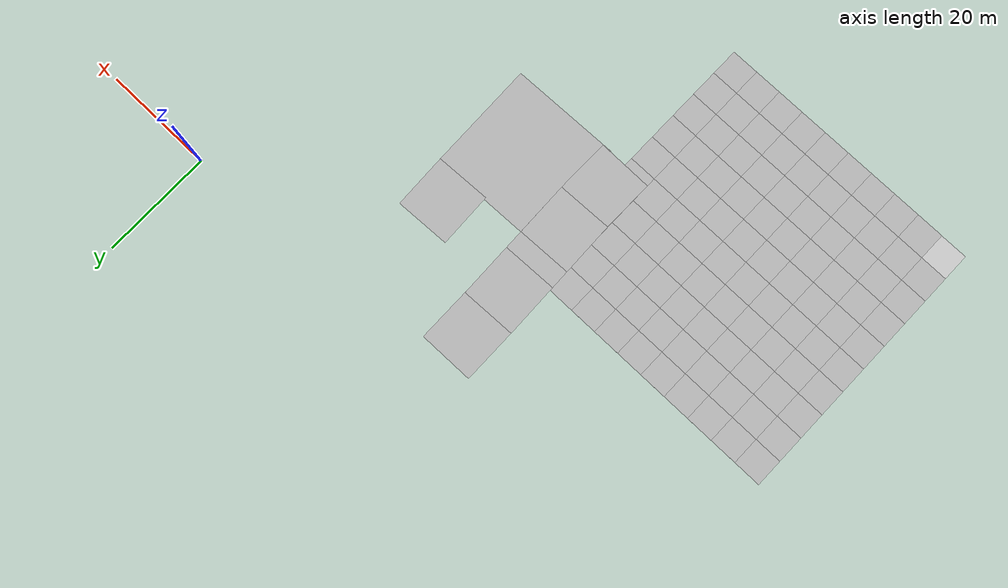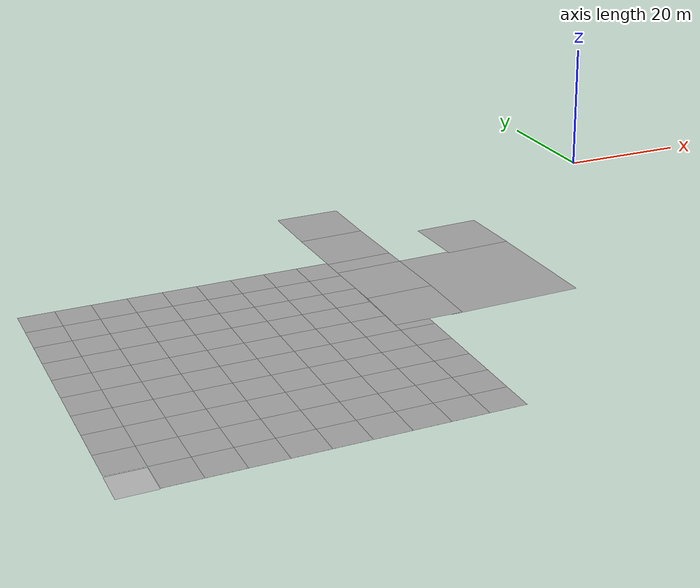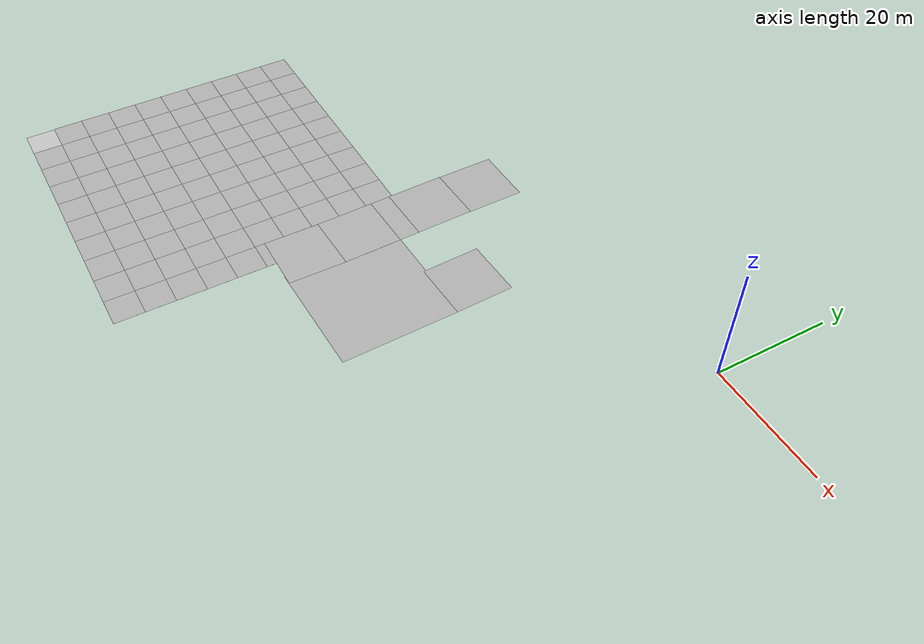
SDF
<sdf version="1.4">
 <world name="default">
  <model name="Road_straight_17">
   <static>1</static>
   <pose>-51.2073 -9.01659 -0.01 0 0 -1.56</pose>
   <link name="link">
    <visual name="visual">
     <pose>0 0 0.04 0 -0 0</pose>
     <geometry>
      <mesh><uri>model://Road_straight/models/Road 01.dae</uri><scale>0.39 0.39 1</scale></mesh>
     </geometry>
    </visual>
    <velocity_decay><linear>0</linear><angular>0</angular></velocity_decay>
   </link>
  </model>
  <model name="Road_straight_18">
   <static>1</static>
   <pose>-50.9651 -19.1524 0.02 0 -0 1.6</pose>
   <link name="link">
    <visual name="visual">
     <pose>0 0 0.04 0 -0 0</pose>
     <geometry>
      <mesh><uri>model://Road_straight/models/Road 01.dae</uri><scale>0.39 0.39 1</scale></mesh>
     </geometry>
    </visual>
    <velocity_decay><linear>0</linear><angular>0</angular></velocity_decay>
   </link>
  </model>
  <model name="Road_hard_curve_11">
   <static>1</static>
   <pose>-32.5076 -23.4149 0 0 -0 0.04</pose>
   <link name="link">
    <visual name="visual">
     <pose>0 0 0.04 0 -0 0</pose>
     <geometry>
      <mesh><uri>model://Road_hard_curve/models/Road 09.dae</uri><scale>0.39 0.39 1</scale></mesh>
     </geometry>
    </visual>
    <velocity_decay><linear>0</linear><angular>0</angular></velocity_decay>
   </link>
  </model>
  <model name="pavement_plane_7">
   <static>1</static>
   <link name="link">
    <collision name="collision">
     <geometry><plane><normal>0 0 1</normal><size>50 50</size></plane></geometry>
     <surface><friction><ode><mu>100</mu><mu2>50</mu2></ode></friction></surface>
    </collision>
    <visual name="visual_0">
     <pose>-25 -25 0 0 -0 0</pose>
     <cast_shadows>0</cast_shadows>
     <geometry><plane><normal>0 0 1</normal><size>5 5</size></plane></geometry>
     <material>
      <script>
       <uri>model://pavement_plane/materials/scripts</uri>
       <uri>model://pavement_plane/materials/textures</uri>
       <name>vrc/pavement</name>
      </script>
     </material>
    </visual>
    <visual name="visual_1">
     <pose>-20 -25 0 0 -0 0</pose>
     <cast_shadows>0</cast_shadows>
     <geometry><plane><normal>0 0 1</normal><size>5 5</size></plane></geometry>
     <material>
      <script>
       <uri>model://pavement_plane/materials/scripts</uri>
       <uri>model://pavement_plane/materials/textures</uri>
       <name>vrc/pavement</name>
      </script>
     </material>
    </visual>
    <visual name="visual_2">
     <pose>-15 -25 0 0 -0 0</pose>
     <cast_shadows>0</cast_shadows>
     <geometry><plane><normal>0 0 1</normal><size>5 5</size></plane></geometry>
     <material>
      <script>
       <uri>model://pavement_plane/materials/scripts</uri>
       <uri>model://pavement_plane/materials/textures</uri>
       <name>vrc/pavement</name>
      </script>
     </material>
    </visual>
    <visual name="visual_3">
     <pose>-10 -25 0 0 -0 0</pose>
     <cast_shadows>0</cast_shadows>
     <geometry><plane><normal>0 0 1</normal><size>5 5</size></plane></geometry>
     <material>
      <script>
       <uri>model://pavement_plane/materials/scripts</uri>
       <uri>model://pavement_plane/materials/textures</uri>
       <name>vrc/pavement</name>
      </script>
     </material>
    </visual>
    <visual name="visual_4">
     <pose>-5 -25 0 0 -0 0</pose>
     <cast_shadows>0</cast_shadows>
     <geometry><plane><normal>0 0 1</normal><size>5 5</size></plane></geometry>
     <material>
      <script>
       <uri>model://pavement_plane/materials/scripts</uri>
       <uri>model://pavement_plane/materials/textures</uri>
       <name>vrc/pavement</name>
      </script>
     </material>
    </visual>
    <visual name="visual_5">
     <pose>0 -25 0 0 -0 0</pose>
     <cast_shadows>0</cast_shadows>
     <geometry><plane><normal>0 0 1</normal><size>5 5</size></plane></geometry>
     <material>
      <script>
       <uri>model://pavement_plane/materials/scripts</uri>
       <uri>model://pavement_plane/materials/textures</uri>
       <name>vrc/pavement</name>
      </script>
     </material>
    </visual>
    <visual name="visual_6">
     <pose>5 -25 0 0 -0 0</pose>
     <cast_shadows>0</cast_shadows>
     <geometry><plane><normal>0 0 1</normal><size>5 5</size></plane></geometry>
     <material>
      <script>
       <uri>model://pavement_plane/materials/scripts</uri>
       <uri>model://pavement_plane/materials/textures</uri>
       <name>vrc/pavement</name>
      </script>
     </material>
    </visual>
    <visual name="visual_7">
     <pose>10 -25 0 0 -0 0</pose>
     <cast_shadows>0</cast_shadows>
     <geometry><plane><normal>0 0 1</normal><size>5 5</size></plane></geometry>
     <material>
      <script>
       <uri>model://pavement_plane/materials/scripts</uri>
       <uri>model://pavement_plane/materials/textures</uri>
       <name>vrc/pavement</name>
      </script>
     </material>
    </visual>
    <visual name="visual_8">
     <pose>15 -25 0 0 -0 0</pose>
     <cast_shadows>0</cast_shadows>
     <geometry><plane><normal>0 0 1</normal><size>5 5</size></plane></geometry>
     <material>
      <script>
       <uri>model://pavement_plane/materials/scripts</uri>
       <uri>model://pavement_plane/materials/textures</uri>
       <name>vrc/pavement</name>
      </script>
     </material>
    </visual>
    <visual name="visual_9">
     <pose>20 -25 0 0 -0 0</pose>
     <cast_shadows>0</cast_shadows>
     <geometry><plane><normal>0 0 1</normal><size>5 5</size></plane></geometry>
     <material>
      <script>
       <uri>model://pavement_plane/materials/scripts</uri>
       <uri>model://pavement_plane/materials/textures</uri>
       <name>vrc/pavement</name>
      </script>
     </material>
    </visual>
    <visual name="visual_10">
     <pose>-25 -20 0 0 -0 0</pose>
     <cast_shadows>0</cast_shadows>
     <geometry><plane><normal>0 0 1</normal><size>5 5</size></plane></geometry>
     <material>
      <script>
       <uri>model://pavement_plane/materials/scripts</uri>
       <uri>model://pavement_plane/materials/textures</uri>
       <name>vrc/pavement</name>
      </script>
     </material>
    </visual>
    <visual name="visual_11">
     <pose>-20 -20 0 0 -0 0</pose>
     <cast_shadows>0</cast_shadows>
     <geometry><plane><normal>0 0 1</normal><size>5 5</size></plane></geometry>
     <material>
      <script>
       <uri>model://pavement_plane/materials/scripts</uri>
       <uri>model://pavement_plane/materials/textures</uri>
       <name>vrc/pavement</name>
      </script>
     </material>
    </visual>
    <visual name="visual_12">
     <pose>-15 -20 0 0 -0 0</pose>
     <cast_shadows>0</cast_shadows>
     <geometry><plane><normal>0 0 1</normal><size>5 5</size></plane></geometry>
     <material>
      <script>
       <uri>model://pavement_plane/materials/scripts</uri>
       <uri>model://pavement_plane/materials/textures</uri>
       <name>vrc/pavement</name>
      </script>
     </material>
    </visual>
    <visual name="visual_13">
     <pose>-10 -20 0 0 -0 0</pose>
     <cast_shadows>0</cast_shadows>
     <geometry><plane><normal>0 0 1</normal><size>5 5</size></plane></geometry>
     <material>
      <script>
       <uri>model://pavement_plane/materials/scripts</uri>
       <uri>model://pavement_plane/materials/textures</uri>
       <name>vrc/pavement</name>
      </script>
     </material>
    </visual>
    <visual name="visual_14">
     <pose>-5 -20 0 0 -0 0</pose>
     <cast_shadows>0</cast_shadows>
     <geometry><plane><normal>0 0 1</normal><size>5 5</size></plane></geometry>
     <material>
      <script>
       <uri>model://pavement_plane/materials/scripts</uri>
       <uri>model://pavement_plane/materials/textures</uri>
       <name>vrc/pavement</name>
      </script>
     </material>
    </visual>
    <visual name="visual_15">
     <pose>0 -20 0 0 -0 0</pose>
     <cast_shadows>0</cast_shadows>
     <geometry><plane><normal>0 0 1</normal><size>5 5</size></plane></geometry>
     <material>
      <script>
       <uri>model://pavement_plane/materials/scripts</uri>
       <uri>model://pavement_plane/materials/textures</uri>
       <name>vrc/pavement</name>
      </script>
     </material>
    </visual>
    <visual name="visual_16">
     <pose>5 -20 0 0 -0 0</pose>
     <cast_shadows>0</cast_shadows>
     <geometry><plane><normal>0 0 1</normal><size>5 5</size></plane></geometry>
     <material>
      <script>
       <uri>model://pavement_plane/materials/scripts</uri>
       <uri>model://pavement_plane/materials/textures</uri>
       <name>vrc/pavement</name>
      </script>
     </material>
    </visual>
    <visual name="visual_17">
     <pose>10 -20 0 0 -0 0</pose>
     <cast_shadows>0</cast_shadows>
     <geometry><plane><normal>0 0 1</normal><size>5 5</size></plane></geometry>
     <material>
      <script>
       <uri>model://pavement_plane/materials/scripts</uri>
       <uri>model://pavement_plane/materials/textures</uri>
       <name>vrc/pavement</name>
      </script>
     </material>
    </visual>
    <visual name="visual_18">
     <pose>15 -20 0 0 -0 0</pose>
     <cast_shadows>0</cast_shadows>
     <geometry><plane><normal>0 0 1</normal><size>5 5</size></plane></geometry>
     <material>
      <script>
       <uri>model://pavement_plane/materials/scripts</uri>
       <uri>model://pavement_plane/materials/textures</uri>
       <name>vrc/pavement</name>
      </script>
     </material>
    </visual>
    <visual name="visual_19">
     <pose>20 -20 0 0 -0 0</pose>
     <cast_shadows>0</cast_shadows>
     <geometry><plane><normal>0 0 1</normal><size>5 5</size></plane></geometry>
     <material>
      <script>
       <uri>model://pavement_plane/materials/scripts</uri>
       <uri>model://pavement_plane/materials/textures</uri>
       <name>vrc/pavement</name>
      </script>
     </material>
    </visual>
    <visual name="visual_20">
     <pose>-25 -15 0 0 -0 0</pose>
     <cast_shadows>0</cast_shadows>
     <geometry><plane><normal>0 0 1</normal><size>5 5</size></plane></geometry>
     <material>
      <script>
       <uri>model://pavement_plane/materials/scripts</uri>
       <uri>model://pavement_plane/materials/textures</uri>
       <name>vrc/pavement</name>
      </script>
     </material>
    </visual>
    <visual name="visual_21">
     <pose>-20 -15 0 0 -0 0</pose>
     <cast_shadows>0</cast_shadows>
     <geometry><plane><normal>0 0 1</normal><size>5 5</size></plane></geometry>
     <material>
      <script>
       <uri>model://pavement_plane/materials/scripts</uri>
       <uri>model://pavement_plane/materials/textures</uri>
       <name>vrc/pavement</name>
      </script>
     </material>
    </visual>
    <visual name="visual_22">
     <pose>-15 -15 0 0 -0 0</pose>
     <cast_shadows>0</cast_shadows>
     <geometry><plane><normal>0 0 1</normal><size>5 5</size></plane></geometry>
     <material>
      <script>
       <uri>model://pavement_plane/materials/scripts</uri>
       <uri>model://pavement_plane/materials/textures</uri>
       <name>vrc/pavement</name>
      </script>
     </material>
    </visual>
    <visual name="visual_23">
     <pose>-10 -15 0 0 -0 0</pose>
     <cast_shadows>0</cast_shadows>
     <geometry><plane><normal>0 0 1</normal><size>5 5</size></plane></geometry>
     <material>
      <script>
       <uri>model://pavement_plane/materials/scripts</uri>
       <uri>model://pavement_plane/materials/textures</uri>
       <name>vrc/pavement</name>
      </script>
     </material>
    </visual>
    <visual name="visual_24">
     <pose>-5 -15 0 0 -0 0</pose>
     <cast_shadows>0</cast_shadows>
     <geometry><plane><normal>0 0 1</normal><size>5 5</size></plane></geometry>
     <material>
      <script>
       <uri>model://pavement_plane/materials/scripts</uri>
       <uri>model://pavement_plane/materials/textures</uri>
       <name>vrc/pavement</name>
      </script>
     </material>
    </visual>
    <visual name="visual_25">
     <pose>0 -15 0 0 -0 0</pose>
     <cast_shadows>0</cast_shadows>
     <geometry><plane><normal>0 0 1</normal><size>5 5</size></plane></geometry>
     <material>
      <script>
       <uri>model://pavement_plane/materials/scripts</uri>
       <uri>model://pavement_plane/materials/textures</uri>
       <name>vrc/pavement</name>
      </script>
     </material>
    </visual>
    <visual name="visual_26">
     <pose>5 -15 0 0 -0 0</pose>
     <cast_shadows>0</cast_shadows>
     <geometry><plane><normal>0 0 1</normal><size>5 5</size></plane></geometry>
     <material>
      <script>
       <uri>model://pavement_plane/materials/scripts</uri>
       <uri>model://pavement_plane/materials/textures</uri>
       <name>vrc/pavement</name>
      </script>
     </material>
    </visual>
    <visual name="visual_27">
     <pose>10 -15 0 0 -0 0</pose>
     <cast_shadows>0</cast_shadows>
     <geometry><plane><normal>0 0 1</normal><size>5 5</size></plane></geometry>
     <material>
      <script>
       <uri>model://pavement_plane/materials/scripts</uri>
       <uri>model://pavement_plane/materials/textures</uri>
       <name>vrc/pavement</name>
      </script>
     </material>
    </visual>
    <visual name="visual_28">
     <pose>15 -15 0 0 -0 0</pose>
     <cast_shadows>0</cast_shadows>
     <geometry><plane><normal>0 0 1</normal><size>5 5</size></plane></geometry>
     <material>
      <script>
       <uri>model://pavement_plane/materials/scripts</uri>
       <uri>model://pavement_plane/materials/textures</uri>
       <name>vrc/pavement</name>
      </script>
     </material>
    </visual>
    <visual name="visual_29">
     <pose>20 -15 0 0 -0 0</pose>
     <cast_shadows>0</cast_shadows>
     <geometry><plane><normal>0 0 1</normal><size>5 5</size></plane></geometry>
     <material>
      <script>
       <uri>model://pavement_plane/materials/scripts</uri>
       <uri>model://pavement_plane/materials/textures</uri>
       <name>vrc/pavement</name>
      </script>
     </material>
    </visual>
    <visual name="visual_30">
     <pose>-25 -10 0 0 -0 0</pose>
     <cast_shadows>0</cast_shadows>
     <geometry><plane><normal>0 0 1</normal><size>5 5</size></plane></geometry>
     <material>
      <script>
       <uri>model://pavement_plane/materials/scripts</uri>
       <uri>model://pavement_plane/materials/textures</uri>
       <name>vrc/pavement</name>
      </script>
     </material>
    </visual>
    <visual name="visual_31">
     <pose>-20 -10 0 0 -0 0</pose>
     <cast_shadows>0</cast_shadows>
     <geometry><plane><normal>0 0 1</normal><size>5 5</size></plane></geometry>
     <material>
      <script>
       <uri>model://pavement_plane/materials/scripts</uri>
       <uri>model://pavement_plane/materials/textures</uri>
       <name>vrc/pavement</name>
      </script>
     </material>
    </visual>
    <visual name="visual_32">
     <pose>-15 -10 0 0 -0 0</pose>
     <cast_shadows>0</cast_shadows>
     <geometry><plane><normal>0 0 1</normal><size>5 5</size></plane></geometry>
     <material>
      <script>
       <uri>model://pavement_plane/materials/scripts</uri>
       <uri>model://pavement_plane/materials/textures</uri>
       <name>vrc/pavement</name>
      </script>
     </material>
    </visual>
    <visual name="visual_33">
     <pose>-10 -10 0 0 -0 0</pose>
     <cast_shadows>0</cast_shadows>
     <geometry><plane><normal>0 0 1</normal><size>5 5</size></plane></geometry>
     <material>
      <script>
       <uri>model://pavement_plane/materials/scripts</uri>
       <uri>model://pavement_plane/materials/textures</uri>
       <name>vrc/pavement</name>
      </script>
     </material>
    </visual>
    <visual name="visual_34">
     <pose>-5 -10 0 0 -0 0</pose>
     <cast_shadows>0</cast_shadows>
     <geometry><plane><normal>0 0 1</normal><size>5 5</size></plane></geometry>
     <material>
      <script>
       <uri>model://pavement_plane/materials/scripts</uri>
       <uri>model://pavement_plane/materials/textures</uri>
       <name>vrc/pavement</name>
      </script>
     </material>
    </visual>
    <visual name="visual_35">
     <pose>0 -10 0 0 -0 0</pose>
     <cast_shadows>0</cast_shadows>
     <geometry><plane><normal>0 0 1</normal><size>5 5</size></plane></geometry>
     <material>
      <script>
       <uri>model://pavement_plane/materials/scripts</uri>
       <uri>model://pavement_plane/materials/textures</uri>
       <name>vrc/pavement</name>
      </script>
     </material>
    </visual>
    <visual name="visual_36">
     <pose>5 -10 0 0 -0 0</pose>
     <cast_shadows>0</cast_shadows>
     <geometry><plane><normal>0 0 1</normal><size>5 5</size></plane></geometry>
     <material>
      <script>
       <uri>model://pavement_plane/materials/scripts</uri>
       <uri>model://pavement_plane/materials/textures</uri>
       <name>vrc/pavement</name>
      </script>
     </material>
    </visual>
    <visual name="visual_37">
     <pose>10 -10 0 0 -0 0</pose>
     <cast_shadows>0</cast_shadows>
     <geometry><plane><normal>0 0 1</normal><size>5 5</size></plane></geometry>
     <material>
      <script>
       <uri>model://pavement_plane/materials/scripts</uri>
       <uri>model://pavement_plane/materials/textures</uri>
       <name>vrc/pavement</name>
      </script>
     </material>
    </visual>
    <visual name="visual_38">
     <pose>15 -10 0 0 -0 0</pose>
     <cast_shadows>0</cast_shadows>
     <geometry><plane><normal>0 0 1</normal><size>5 5</size></plane></geometry>
     <material>
      <script>
       <uri>model://pavement_plane/materials/scripts</uri>
       <uri>model://pavement_plane/materials/textures</uri>
       <name>vrc/pavement</name>
      </script>
     </material>
    </visual>
    <visual name="visual_39">
     <pose>20 -10 0 0 -0 0</pose>
     <cast_shadows>0</cast_shadows>
     <geometry><plane><normal>0 0 1</normal><size>5 5</size></plane></geometry>
     <material>
      <script>
       <uri>model://pavement_plane/materials/scripts</uri>
       <uri>model://pavement_plane/materials/textures</uri>
       <name>vrc/pavement</name>
      </script>
     </material>
    </visual>
    <visual name="visual_40">
     <pose>-25 -5 0 0 -0 0</pose>
     <cast_shadows>0</cast_shadows>
     <geometry><plane><normal>0 0 1</normal><size>5 5</size></plane></geometry>
     <material>
      <script>
       <uri>model://pavement_plane/materials/scripts</uri>
       <uri>model://pavement_plane/materials/textures</uri>
       <name>vrc/pavement</name>
      </script>
     </material>
    </visual>
    <visual name="visual_41">
     <pose>-20 -5 0 0 -0 0</pose>
     <cast_shadows>0</cast_shadows>
     <geometry><plane><normal>0 0 1</normal><size>5 5</size></plane></geometry>
     <material>
      <script>
       <uri>model://pavement_plane/materials/scripts</uri>
       <uri>model://pavement_plane/materials/textures</uri>
       <name>vrc/pavement</name>
      </script>
     </material>
    </visual>
    <visual name="visual_42">
     <pose>-15 -5 0 0 -0 0</pose>
     <cast_shadows>0</cast_shadows>
     <geometry><plane><normal>0 0 1</normal><size>5 5</size></plane></geometry>
     <material>
      <script>
       <uri>model://pavement_plane/materials/scripts</uri>
       <uri>model://pavement_plane/materials/textures</uri>
       <name>vrc/pavement</name>
      </script>
     </material>
    </visual>
    <visual name="visual_43">
     <pose>-10 -5 0 0 -0 0</pose>
     <cast_shadows>0</cast_shadows>
     <geometry><plane><normal>0 0 1</normal><size>5 5</size></plane></geometry>
     <material>
      <script>
       <uri>model://pavement_plane/materials/scripts</uri>
       <uri>model://pavement_plane/materials/textures</uri>
       <name>vrc/pavement</name>
      </script>
     </material>
    </visual>
    <visual name="visual_44">
     <pose>-5 -5 0 0 -0 0</pose>
     <cast_shadows>0</cast_shadows>
     <geometry><plane><normal>0 0 1</normal><size>5 5</size></plane></geometry>
     <material>
      <script>
       <uri>model://pavement_plane/materials/scripts</uri>
       <uri>model://pavement_plane/materials/textures</uri>
       <name>vrc/pavement</name>
      </script>
     </material>
    </visual>
    <visual name="visual_45">
     <pose>0 -5 0 0 -0 0</pose>
     <cast_shadows>0</cast_shadows>
     <geometry><plane><normal>0 0 1</normal><size>5 5</size></plane></geometry>
     <material>
      <script>
       <uri>model://pavement_plane/materials/scripts</uri>
       <uri>model://pavement_plane/materials/textures</uri>
       <name>vrc/pavement</name>
      </script>
     </material>
    </visual>
    <visual name="visual_46">
     <pose>5 -5 0 0 -0 0</pose>
     <cast_shadows>0</cast_shadows>
     <geometry><plane><normal>0 0 1</normal><size>5 5</size></plane></geometry>
     <material>
      <script>
       <uri>model://pavement_plane/materials/scripts</uri>
       <uri>model://pavement_plane/materials/textures</uri>
       <name>vrc/pavement</name>
      </script>
     </material>
    </visual>
    <visual name="visual_47">
     <pose>10 -5 0 0 -0 0</pose>
     <cast_shadows>0</cast_shadows>
     <geometry><plane><normal>0 0 1</normal><size>5 5</size></plane></geometry>
     <material>
      <script>
       <uri>model://pavement_plane/materials/scripts</uri>
       <uri>model://pavement_plane/materials/textures</uri>
       <name>vrc/pavement</name>
      </script>
     </material>
    </visual>
    <visual name="visual_48">
     <pose>15 -5 0 0 -0 0</pose>
     <cast_shadows>0</cast_shadows>
     <geometry><plane><normal>0 0 1</normal><size>5 5</size></plane></geometry>
     <material>
      <script>
       <uri>model://pavement_plane/materials/scripts</uri>
       <uri>model://pavement_plane/materials/textures</uri>
       <name>vrc/pavement</name>
      </script>
     </material>
    </visual>
    <visual name="visual_49">
     <pose>20 -5 0 0 -0 0</pose>
     <cast_shadows>0</cast_shadows>
     <geometry><plane><normal>0 0 1</normal><size>5 5</size></plane></geometry>
     <material>
      <script>
       <uri>model://pavement_plane/materials/scripts</uri>
       <uri>model://pavement_plane/materials/textures</uri>
       <name>vrc/pavement</name>
      </script>
     </material>
    </visual>
    <visual name="visual_50">
     <pose>-25 0 0 0 -0 0</pose>
     <cast_shadows>0</cast_shadows>
     <geometry><plane><normal>0 0 1</normal><size>5 5</size></plane></geometry>
     <material>
      <script>
       <uri>model://pavement_plane/materials/scripts</uri>
       <uri>model://pavement_plane/materials/textures</uri>
       <name>vrc/pavement</name>
      </script>
     </material>
    </visual>
    <visual name="visual_51">
     <pose>-20 0 0 0 -0 0</pose>
     <cast_shadows>0</cast_shadows>
     <geometry><plane><normal>0 0 1</normal><size>5 5</size></plane></geometry>
     <material>
      <script>
       <uri>model://pavement_plane/materials/scripts</uri>
       <uri>model://pavement_plane/materials/textures</uri>
       <name>vrc/pavement</name>
      </script>
     </material>
    </visual>
    <visual name="visual_52">
     <pose>-15 0 0 0 -0 0</pose>
     <cast_shadows>0</cast_shadows>
     <geometry><plane><normal>0 0 1</normal><size>5 5</size></plane></geometry>
     <material>
      <script>
       <uri>model://pavement_plane/materials/scripts</uri>
       <uri>model://pavement_plane/materials/textures</uri>
       <name>vrc/pavement</name>
      </script>
     </material>
    </visual>
    <visual name="visual_53">
     <pose>-10 0 0 0 -0 0</pose>
     <cast_shadows>0</cast_shadows>
     <geometry><plane><normal>0 0 1</normal><size>5 5</size></plane></geometry>
     <material>
      <script>
       <uri>model://pavement_plane/materials/scripts</uri>
       <uri>model://pavement_plane/materials/textures</uri>
       <name>vrc/pavement</name>
      </script>
     </material>
    </visual>
    <visual name="visual_54">
     <pose>-5 0 0 0 -0 0</pose>
     <cast_shadows>0</cast_shadows>
     <geometry><plane><normal>0 0 1</normal><size>5 5</size></plane></geometry>
     <material>
      <script>
       <uri>model://pavement_plane/materials/scripts</uri>
       <uri>model://pavement_plane/materials/textures</uri>
       <name>vrc/pavement</name>
      </script>
     </material>
    </visual>
    <visual name="visual_55">
     <cast_shadows>0</cast_shadows>
     <geometry><plane><normal>0 0 1</normal><size>5 5</size></plane></geometry>
     <material>
      <script>
       <uri>model://pavement_plane/materials/scripts</uri>
       <uri>model://pavement_plane/materials/textures</uri>
       <name>vrc/pavement</name>
      </script>
     </material>
    </visual>
    <visual name="visual_56">
     <pose>5 0 0 0 -0 0</pose>
     <cast_shadows>0</cast_shadows>
     <geometry><plane><normal>0 0 1</normal><size>5 5</size></plane></geometry>
     <material>
      <script>
       <uri>model://pavement_plane/materials/scripts</uri>
       <uri>model://pavement_plane/materials/textures</uri>
       <name>vrc/pavement</name>
      </script>
     </material>
    </visual>
    <visual name="visual_57">
     <pose>10 0 0 0 -0 0</pose>
     <cast_shadows>0</cast_shadows>
     <geometry><plane><normal>0 0 1</normal><size>5 5</size></plane></geometry>
     <material>
      <script>
       <uri>model://pavement_plane/materials/scripts</uri>
       <uri>model://pavement_plane/materials/textures</uri>
       <name>vrc/pavement</name>
      </script>
     </material>
    </visual>
    <visual name="visual_58">
     <pose>15 0 0 0 -0 0</pose>
     <cast_shadows>0</cast_shadows>
     <geometry><plane><normal>0 0 1</normal><size>5 5</size></plane></geometry>
     <material>
      <script>
       <uri>model://pavement_plane/materials/scripts</uri>
       <uri>model://pavement_plane/materials/textures</uri>
       <name>vrc/pavement</name>
      </script>
     </material>
    </visual>
    <visual name="visual_59">
     <pose>20 0 0 0 -0 0</pose>
     <cast_shadows>0</cast_shadows>
     <geometry><plane><normal>0 0 1</normal><size>5 5</size></plane></geometry>
     <material>
      <script>
       <uri>model://pavement_plane/materials/scripts</uri>
       <uri>model://pavement_plane/materials/textures</uri>
       <name>vrc/pavement</name>
      </script>
     </material>
    </visual>
    <visual name="visual_60">
     <pose>-25 5 0 0 -0 0</pose>
     <cast_shadows>0</cast_shadows>
     <geometry><plane><normal>0 0 1</normal><size>5 5</size></plane></geometry>
     <material>
      <script>
       <uri>model://pavement_plane/materials/scripts</uri>
       <uri>model://pavement_plane/materials/textures</uri>
       <name>vrc/pavement</name>
      </script>
     </material>
    </visual>
    <visual name="visual_61">
     <pose>-20 5 0 0 -0 0</pose>
     <cast_shadows>0</cast_shadows>
     <geometry><plane><normal>0 0 1</normal><size>5 5</size></plane></geometry>
     <material>
      <script>
       <uri>model://pavement_plane/materials/scripts</uri>
       <uri>model://pavement_plane/materials/textures</uri>
       <name>vrc/pavement</name>
      </script>
     </material>
    </visual>
    <visual name="visual_62">
     <pose>-15 5 0 0 -0 0</pose>
     <cast_shadows>0</cast_shadows>
     <geometry><plane><normal>0 0 1</normal><size>5 5</size></plane></geometry>
     <material>
      <script>
       <uri>model://pavement_plane/materials/scripts</uri>
       <uri>model://pavement_plane/materials/textures</uri>
       <name>vrc/pavement</name>
      </script>
     </material>
    </visual>
    <visual name="visual_63">
     <pose>-10 5 0 0 -0 0</pose>
     <cast_shadows>0</cast_shadows>
     <geometry><plane><normal>0 0 1</normal><size>5 5</size></plane></geometry>
     <material>
      <script>
       <uri>model://pavement_plane/materials/scripts</uri>
       <uri>model://pavement_plane/materials/textures</uri>
       <name>vrc/pavement</name>
      </script>
     </material>
    </visual>
    <visual name="visual_64">
     <pose>-5 5 0 0 -0 0</pose>
     <cast_shadows>0</cast_shadows>
     <geometry><plane><normal>0 0 1</normal><size>5 5</size></plane></geometry>
     <material>
      <script>
       <uri>model://pavement_plane/materials/scripts</uri>
       <uri>model://pavement_plane/materials/textures</uri>
       <name>vrc/pavement</name>
      </script>
     </material>
    </visual>
    <visual name="visual_65">
     <pose>0 5 0 0 -0 0</pose>
     <cast_shadows>0</cast_shadows>
     <geometry><plane><normal>0 0 1</normal><size>5 5</size></plane></geometry>
     <material>
      <script>
       <uri>model://pavement_plane/materials/scripts</uri>
       <uri>model://pavement_plane/materials/textures</uri>
       <name>vrc/pavement</name>
      </script>
     </material>
    </visual>
    <visual name="visual_66">
     <pose>5 5 0 0 -0 0</pose>
     <cast_shadows>0</cast_shadows>
     <geometry><plane><normal>0 0 1</normal><size>5 5</size></plane></geometry>
     <material>
      <script>
       <uri>model://pavement_plane/materials/scripts</uri>
       <uri>model://pavement_plane/materials/textures</uri>
       <name>vrc/pavement</name>
      </script>
     </material>
    </visual>
    <visual name="visual_67">
     <pose>10 5 0 0 -0 0</pose>
     <cast_shadows>0</cast_shadows>
     <geometry><plane><normal>0 0 1</normal><size>5 5</size></plane></geometry>
     <material>
      <script>
       <uri>model://pavement_plane/materials/scripts</uri>
       <uri>model://pavement_plane/materials/textures</uri>
       <name>vrc/pavement</name>
      </script>
     </material>
    </visual>
    <visual name="visual_68">
     <pose>15 5 0 0 -0 0</pose>
     <cast_shadows>0</cast_shadows>
     <geometry><plane><normal>0 0 1</normal><size>5 5</size></plane></geometry>
     <material>
      <script>
       <uri>model://pavement_plane/materials/scripts</uri>
       <uri>model://pavement_plane/materials/textures</uri>
       <name>vrc/pavement</name>
      </script>
     </material>
    </visual>
    <visual name="visual_69">
     <pose>20 5 0 0 -0 0</pose>
     <cast_shadows>0</cast_shadows>
     <geometry><plane><normal>0 0 1</normal><size>5 5</size></plane></geometry>
     <material>
      <script>
       <uri>model://pavement_plane/materials/scripts</uri>
       <uri>model://pavement_plane/materials/textures</uri>
       <name>vrc/pavement</name>
      </script>
     </material>
    </visual>
    <visual name="visual_70">
     <pose>-25 10 0 0 -0 0</pose>
     <cast_shadows>0</cast_shadows>
     <geometry><plane><normal>0 0 1</normal><size>5 5</size></plane></geometry>
     <material>
      <script>
       <uri>model://pavement_plane/materials/scripts</uri>
       <uri>model://pavement_plane/materials/textures</uri>
       <name>vrc/pavement</name>
      </script>
     </material>
    </visual>
    <visual name="visual_71">
     <pose>-20 10 0 0 -0 0</pose>
     <cast_shadows>0</cast_shadows>
     <geometry><plane><normal>0 0 1</normal><size>5 5</size></plane></geometry>
     <material>
      <script>
       <uri>model://pavement_plane/materials/scripts</uri>
       <uri>model://pavement_plane/materials/textures</uri>
       <name>vrc/pavement</name>
      </script>
     </material>
    </visual>
    <visual name="visual_72">
     <pose>-15 10 0 0 -0 0</pose>
     <cast_shadows>0</cast_shadows>
     <geometry><plane><normal>0 0 1</normal><size>5 5</size></plane></geometry>
     <material>
      <script>
       <uri>model://pavement_plane/materials/scripts</uri>
       <uri>model://pavement_plane/materials/textures</uri>
       <name>vrc/pavement</name>
      </script>
     </material>
    </visual>
    <visual name="visual_73">
     <pose>-10 10 0 0 -0 0</pose>
     <cast_shadows>0</cast_shadows>
     <geometry><plane><normal>0 0 1</normal><size>5 5</size></plane></geometry>
     <material>
      <script>
       <uri>model://pavement_plane/materials/scripts</uri>
       <uri>model://pavement_plane/materials/textures</uri>
       <name>vrc/pavement</name>
      </script>
     </material>
    </visual>
    <visual name="visual_74">
     <pose>-5 10 0 0 -0 0</pose>
     <cast_shadows>0</cast_shadows>
     <geometry><plane><normal>0 0 1</normal><size>5 5</size></plane></geometry>
     <material>
      <script>
       <uri>model://pavement_plane/materials/scripts</uri>
       <uri>model://pavement_plane/materials/textures</uri>
       <name>vrc/pavement</name>
      </script>
     </material>
    </visual>
    <visual name="visual_75">
     <pose>0 10 0 0 -0 0</pose>
     <cast_shadows>0</cast_shadows>
     <geometry><plane><normal>0 0 1</normal><size>5 5</size></plane></geometry>
     <material>
      <script>
       <uri>model://pavement_plane/materials/scripts</uri>
       <uri>model://pavement_plane/materials/textures</uri>
       <name>vrc/pavement</name>
      </script>
     </material>
    </visual>
    <visual name="visual_76">
     <pose>5 10 0 0 -0 0</pose>
     <cast_shadows>0</cast_shadows>
     <geometry><plane><normal>0 0 1</normal><size>5 5</size></plane></geometry>
     <material>
      <script>
       <uri>model://pavement_plane/materials/scripts</uri>
       <uri>model://pavement_plane/materials/textures</uri>
       <name>vrc/pavement</name>
      </script>
     </material>
    </visual>
    <visual name="visual_77">
     <pose>10 10 0 0 -0 0</pose>
     <cast_shadows>0</cast_shadows>
     <geometry><plane><normal>0 0 1</normal><size>5 5</size></plane></geometry>
     <material>
      <script>
       <uri>model://pavement_plane/materials/scripts</uri>
       <uri>model://pavement_plane/materials/textures</uri>
       <name>vrc/pavement</name>
      </script>
     </material>
    </visual>
    <visual name="visual_78">
     <pose>15 10 0 0 -0 0</pose>
     <cast_shadows>0</cast_shadows>
     <geometry><plane><normal>0 0 1</normal><size>5 5</size></plane></geometry>
     <material>
      <script>
       <uri>model://pavement_plane/materials/scripts</uri>
       <uri>model://pavement_plane/materials/textures</uri>
       <name>vrc/pavement</name>
      </script>
     </material>
    </visual>
    <visual name="visual_79">
     <pose>20 10 0 0 -0 0</pose>
     <cast_shadows>0</cast_shadows>
     <geometry><plane><normal>0 0 1</normal><size>5 5</size></plane></geometry>
     <material>
      <script>
       <uri>model://pavement_plane/materials/scripts</uri>
       <uri>model://pavement_plane/materials/textures</uri>
       <name>vrc/pavement</name>
      </script>
     </material>
    </visual>
    <visual name="visual_80">
     <pose>-25 15 0 0 -0 0</pose>
     <cast_shadows>0</cast_shadows>
     <geometry><plane><normal>0 0 1</normal><size>5 5</size></plane></geometry>
     <material>
      <script>
       <uri>model://pavement_plane/materials/scripts</uri>
       <uri>model://pavement_plane/materials/textures</uri>
       <name>vrc/pavement</name>
      </script>
     </material>
    </visual>
    <visual name="visual_81">
     <pose>-20 15 0 0 -0 0</pose>
     <cast_shadows>0</cast_shadows>
     <geometry><plane><normal>0 0 1</normal><size>5 5</size></plane></geometry>
     <material>
      <script>
       <uri>model://pavement_plane/materials/scripts</uri>
       <uri>model://pavement_plane/materials/textures</uri>
       <name>vrc/pavement</name>
      </script>
     </material>
    </visual>
    <visual name="visual_82">
     <pose>-15 15 0 0 -0 0</pose>
     <cast_shadows>0</cast_shadows>
     <geometry><plane><normal>0 0 1</normal><size>5 5</size></plane></geometry>
     <material>
      <script>
       <uri>model://pavement_plane/materials/scripts</uri>
       <uri>model://pavement_plane/materials/textures</uri>
       <name>vrc/pavement</name>
      </script>
     </material>
    </visual>
    <visual name="visual_83">
     <pose>-10 15 0 0 -0 0</pose>
     <cast_shadows>0</cast_shadows>
     <geometry><plane><normal>0 0 1</normal><size>5 5</size></plane></geometry>
     <material>
      <script>
       <uri>model://pavement_plane/materials/scripts</uri>
       <uri>model://pavement_plane/materials/textures</uri>
       <name>vrc/pavement</name>
      </script>
     </material>
    </visual>
    <visual name="visual_84">
     <pose>-5 15 0 0 -0 0</pose>
     <cast_shadows>0</cast_shadows>
     <geometry><plane><normal>0 0 1</normal><size>5 5</size></plane></geometry>
     <material>
      <script>
       <uri>model://pavement_plane/materials/scripts</uri>
       <uri>model://pavement_plane/materials/textures</uri>
       <name>vrc/pavement</name>
      </script>
     </material>
    </visual>
    <visual name="visual_85">
     <pose>0 15 0 0 -0 0</pose>
     <cast_shadows>0</cast_shadows>
     <geometry><plane><normal>0 0 1</normal><size>5 5</size></plane></geometry>
     <material>
      <script>
       <uri>model://pavement_plane/materials/scripts</uri>
       <uri>model://pavement_plane/materials/textures</uri>
       <name>vrc/pavement</name>
      </script>
     </material>
    </visual>
    <visual name="visual_86">
     <pose>5 15 0 0 -0 0</pose>
     <cast_shadows>0</cast_shadows>
     <geometry><plane><normal>0 0 1</normal><size>5 5</size></plane></geometry>
     <material>
      <script>
       <uri>model://pavement_plane/materials/scripts</uri>
       <uri>model://pavement_plane/materials/textures</uri>
       <name>vrc/pavement</name>
      </script>
     </material>
    </visual>
    <visual name="visual_87">
     <pose>10 15 0 0 -0 0</pose>
     <cast_shadows>0</cast_shadows>
     <geometry><plane><normal>0 0 1</normal><size>5 5</size></plane></geometry>
     <material>
      <script>
       <uri>model://pavement_plane/materials/scripts</uri>
       <uri>model://pavement_plane/materials/textures</uri>
       <name>vrc/pavement</name>
      </script>
     </material>
    </visual>
    <visual name="visual_88">
     <pose>15 15 0 0 -0 0</pose>
     <cast_shadows>0</cast_shadows>
     <geometry><plane><normal>0 0 1</normal><size>5 5</size></plane></geometry>
     <material>
      <script>
       <uri>model://pavement_plane/materials/scripts</uri>
       <uri>model://pavement_plane/materials/textures</uri>
       <name>vrc/pavement</name>
      </script>
     </material>
    </visual>
    <visual name="visual_89">
     <pose>20 15 0 0 -0 0</pose>
     <cast_shadows>0</cast_shadows>
     <geometry><plane><normal>0 0 1</normal><size>5 5</size></plane></geometry>
     <material>
      <script>
       <uri>model://pavement_plane/materials/scripts</uri>
       <uri>model://pavement_plane/materials/textures</uri>
       <name>vrc/pavement</name>
      </script>
     </material>
    </visual>
    <visual name="visual_90">
     <pose>-25 20 0 0 -0 0</pose>
     <cast_shadows>0</cast_shadows>
     <geometry><plane><normal>0 0 1</normal><size>5 5</size></plane></geometry>
     <material>
      <script>
       <uri>model://pavement_plane/materials/scripts</uri>
       <uri>model://pavement_plane/materials/textures</uri>
       <name>vrc/pavement</name>
      </script>
     </material>
    </visual>
    <visual name="visual_91">
     <pose>-20 20 0 0 -0 0</pose>
     <cast_shadows>0</cast_shadows>
     <geometry><plane><normal>0 0 1</normal><size>5 5</size></plane></geometry>
     <material>
      <script>
       <uri>model://pavement_plane/materials/scripts</uri>
       <uri>model://pavement_plane/materials/textures</uri>
       <name>vrc/pavement</name>
      </script>
     </material>
    </visual>
    <visual name="visual_92">
     <pose>-15 20 0 0 -0 0</pose>
     <cast_shadows>0</cast_shadows>
     <geometry><plane><normal>0 0 1</normal><size>5 5</size></plane></geometry>
     <material>
      <script>
       <uri>model://pavement_plane/materials/scripts</uri>
       <uri>model://pavement_plane/materials/textures</uri>
       <name>vrc/pavement</name>
      </script>
     </material>
    </visual>
    <visual name="visual_93">
     <pose>-10 20 0 0 -0 0</pose>
     <cast_shadows>0</cast_shadows>
     <geometry><plane><normal>0 0 1</normal><size>5 5</size></plane></geometry>
     <material>
      <script>
       <uri>model://pavement_plane/materials/scripts</uri>
       <uri>model://pavement_plane/materials/textures</uri>
       <name>vrc/pavement</name>
      </script>
     </material>
    </visual>
    <visual name="visual_94">
     <pose>-5 20 0 0 -0 0</pose>
     <cast_shadows>0</cast_shadows>
     <geometry><plane><normal>0 0 1</normal><size>5 5</size></plane></geometry>
     <material>
      <script>
       <uri>model://pavement_plane/materials/scripts</uri>
       <uri>model://pavement_plane/materials/textures</uri>
       <name>vrc/pavement</name>
      </script>
     </material>
    </visual>
    <visual name="visual_95">
     <pose>0 20 0 0 -0 0</pose>
     <cast_shadows>0</cast_shadows>
     <geometry><plane><normal>0 0 1</normal><size>5 5</size></plane></geometry>
     <material>
      <script>
       <uri>model://pavement_plane/materials/scripts</uri>
       <uri>model://pavement_plane/materials/textures</uri>
       <name>vrc/pavement</name>
      </script>
     </material>
    </visual>
    <visual name="visual_96">
     <pose>5 20 0 0 -0 0</pose>
     <cast_shadows>0</cast_shadows>
     <geometry><plane><normal>0 0 1</normal><size>5 5</size></plane></geometry>
     <material>
      <script>
       <uri>model://pavement_plane/materials/scripts</uri>
       <uri>model://pavement_plane/materials/textures</uri>
       <name>vrc/pavement</name>
      </script>
     </material>
    </visual>
    <visual name="visual_97">
     <pose>10 20 0 0 -0 0</pose>
     <cast_shadows>0</cast_shadows>
     <geometry><plane><normal>0 0 1</normal><size>5 5</size></plane></geometry>
     <material>
      <script>
       <uri>model://pavement_plane/materials/scripts</uri>
       <uri>model://pavement_plane/materials/textures</uri>
       <name>vrc/pavement</name>
      </script>
     </material>
    </visual>
    <visual name="visual_98">
     <pose>15 20 0 0 -0 0</pose>
     <cast_shadows>0</cast_shadows>
     <geometry><plane><normal>0 0 1</normal><size>5 5</size></plane></geometry>
     <material>
      <script>
       <uri>model://pavement_plane/materials/scripts</uri>
       <uri>model://pavement_plane/materials/textures</uri>
       <name>vrc/pavement</name>
      </script>
     </material>
    </visual>
    <visual name="visual_99">
     <pose>20 20 0 0 -0 0</pose>
     <cast_shadows>0</cast_shadows>
     <geometry><plane><normal>0 0 1</normal><size>5 5</size></plane></geometry>
     <material>
      <script>
       <uri>model://pavement_plane/materials/scripts</uri>
       <uri>model://pavement_plane/materials/textures</uri>
       <name>vrc/pavement</name>
      </script>
     </material>
    </visual>
    <velocity_decay><linear>0</linear><angular>0</angular></velocity_decay>
   </link>
   <pose>-73 -46 0 0 -0 0</pose>
  </model>
  <model name="Road_straight_21">
   <static>1</static>
   <pose>-50.6884 -28.8741 0 0 -0 1.6</pose>
   <link name="link">
    <visual name="visual">
     <pose>0 0 0.04 0 -0 0</pose>
     <geometry>
      <mesh><uri>model://Road_straight/models/Road 01.dae</uri><scale>0.39 0.39 1</scale></mesh>
     </geometry>
    </visual>
    <velocity_decay><linear>0</linear><angular>0</angular></velocity_decay>
   </link>
  </model>
  <model name="Road_curve_3">
   <static>1</static>
   <pose>-36.9181 -37.6027 0 0 0 -3.11681</pose>
   <link name="link">
    <visual name="visual">
     <pose>0 0 -7.83 0 -0 0</pose>
     <geometry><mesh><uri>model://Road_curve/models/Road 06.dae</uri><scale>0.39 0.39 1</scale></mesh></geometry>
    </visual>
    <velocity_decay><linear>0</linear><angular>0</angular></velocity_decay>
   </link>
  </model>
  <model name="Road_hard_curve_13">
   <static>1</static>
   <pose>-49.3377 -41.4267 0 0 -0 1.56319</pose>
   <link name="link">
    <visual name="visual">
     <pose>0 0 0.04 0 -0 0</pose>
     <geometry>
      <mesh><uri>model://Road_hard_curve/models/Road 09.dae</uri><scale>0.39 0.39 1</scale></mesh>
     </geometry>
    </visual>
    <velocity_decay><linear>0</linear><angular>0</angular></velocity_decay>
   </link>
  </model>
  <model name="Road_straight_22">
   <static>1</static>
   <pose>-50.5904 -32.5253 0.01 0 -0 1.6</pose>
   <link name="link">
    <visual name="visual">
     <pose>0 0 0.04 0 -0 0</pose>
     <geometry>
      <mesh><uri>model://Road_straight/models/Road 01.dae</uri><scale>0.39 0.39 1</scale></mesh>
     </geometry>
    </visual>
    <velocity_decay><linear>0</linear><angular>0</angular></velocity_decay>
   </link>
  </model>
 </world>
</sdf>
